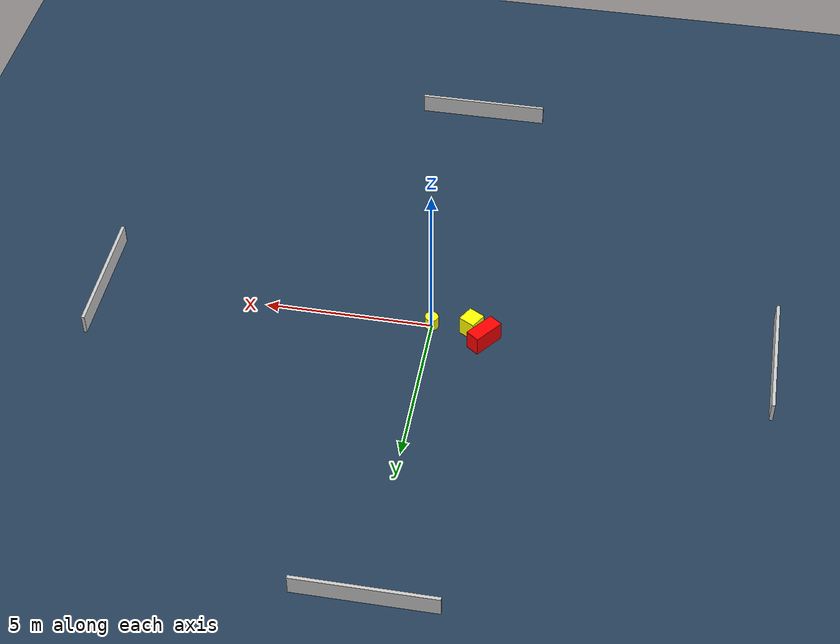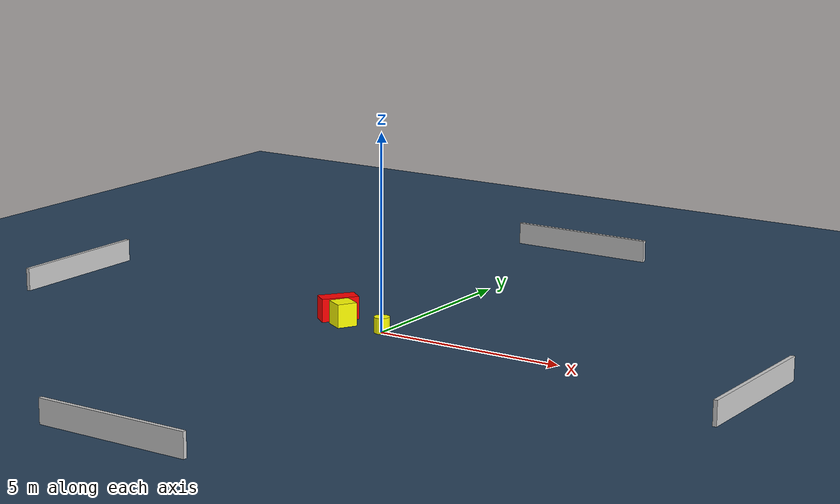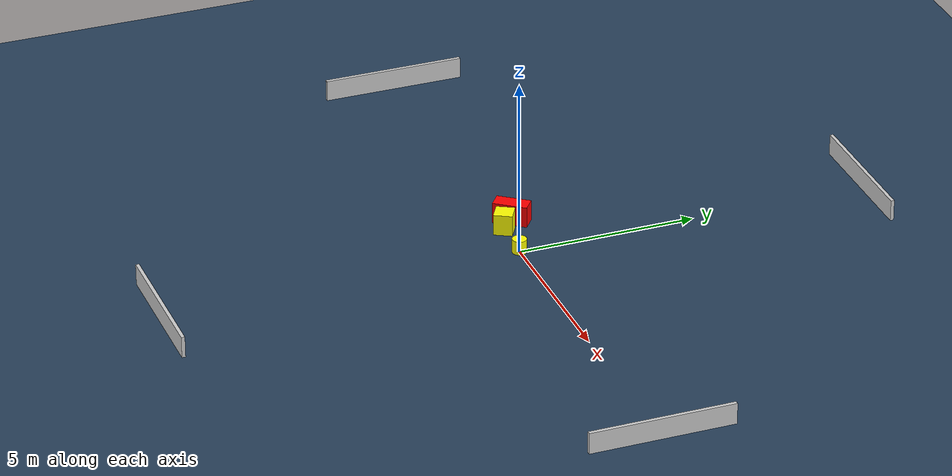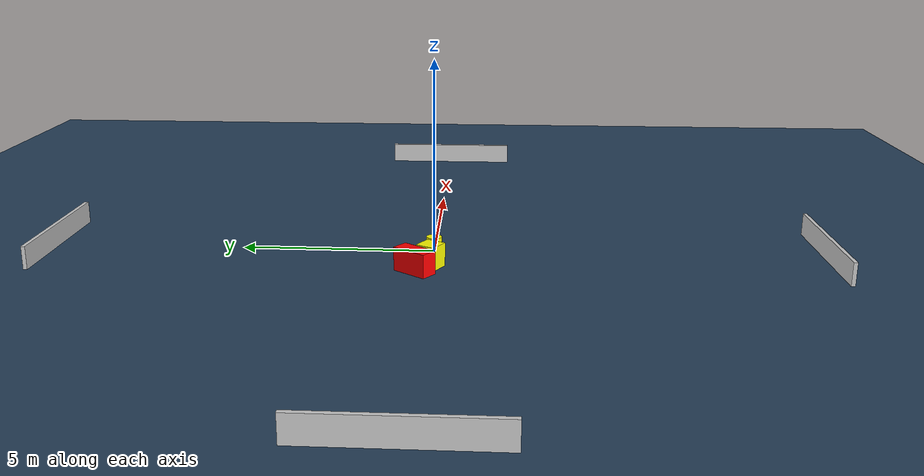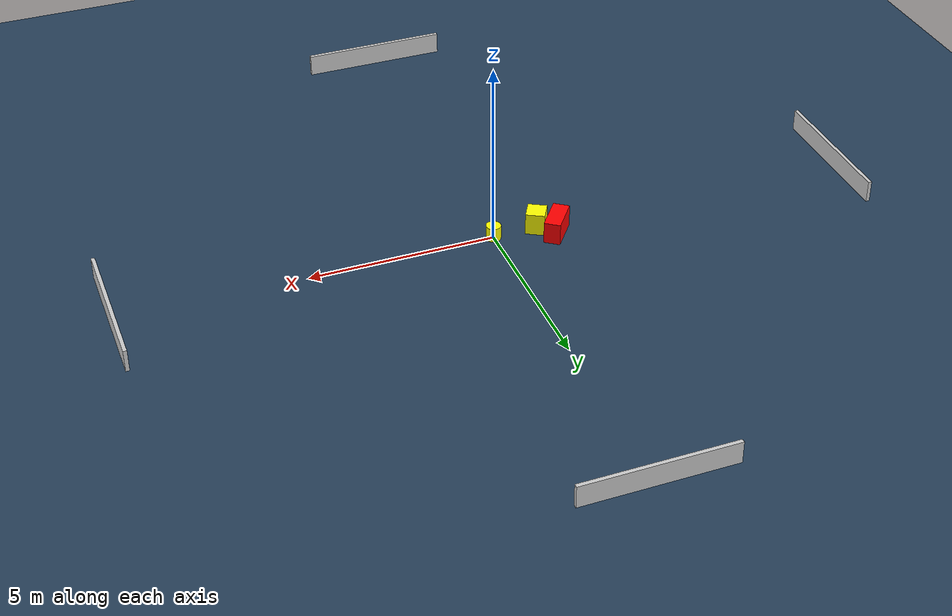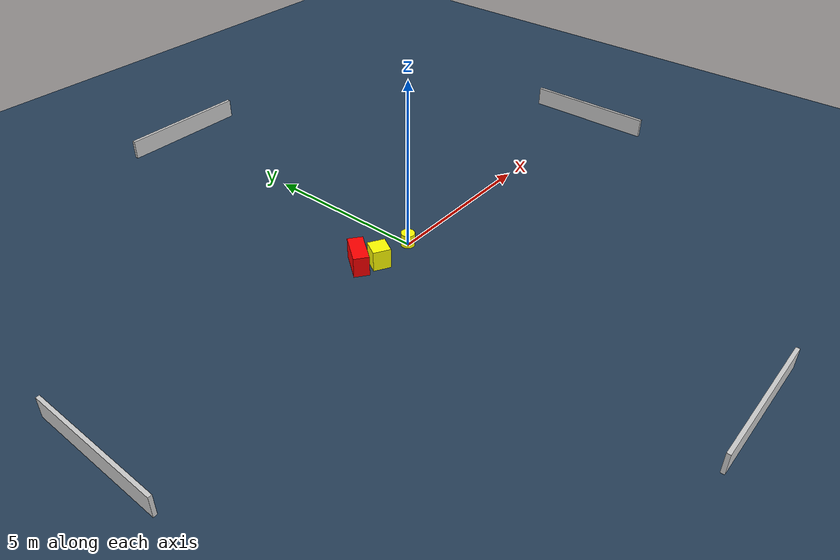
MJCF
<?xml version="1.0" ?>
<mujoco model="generated_environment">
  <option timestep="0.01" integrator="RK4" cone="elliptic"/>
  <default>
    <geom density="1"/>
  </default>
  <asset>
    <texture builtin="gradient" height="3072" name="skybox" rgb1="0.3 0.5 0.7" rgb2="0 0 0" type="skybox" width="512"/>
    <texture builtin="checker" height="300" name="groundplane" rgb1="0.2 0.3 0.4" rgb2="0.1 0.2 0.3" type="2d" width="300"/>
    <material name="groundplane" reflectance="0.2" texrepeat="5 5" texture="groundplane"/>
  </asset>
  <worldbody>
    <light dir="0 0 -1" directional="true" pos="0 0 1.5"/>
    <geom condim="3" friction="0.5 0.005 0.001" material="groundplane" name="floor" pos="0 0 0" size="0 0 0.05" type="plane"/>
    <body name="walls">
      <geom name="wall_1" condim="4" pos="-10.0 0.0 0.3" rgba="0.800000011920929 0.800000011920929 0.800000011920929 1.0" size="0.05 2.0 0.3" type="box"/>
      <geom name="wall_2" condim="4" pos="10.0 0.0 0.3" rgba="0.800000011920929 0.800000011920929 0.800000011920929 1.0" size="0.05 2.0 0.3" type="box"/>
      <geom name="wall_3" condim="4" pos="0.0 -10.0 0.3" rgba="0.800000011920929 0.800000011920929 0.800000011920929 1.0" size="2.0 0.05 0.3" type="box"/>
      <geom name="wall_4" condim="4" pos="0.0 10.0 0.3" rgba="0.800000011920929 0.800000011920929 0.800000011920929 1.0" size="2.0 0.05 0.3" type="box"/>
    </body>
    <body name="robot">
      <joint name="joint_x" type="slide" pos="0 0 0" axis="1 0 0"/>
      <joint name="joint_y" type="slide" pos="0 0 0" axis="0 1 0"/>
      <geom name="robot" type="cylinder" pos="0.0 0.0 0.2" size="0.2 0.2 0.0" mass="5.0" friction="1.0 0.005 0.0001" condim="4" rgba="1.0 1.0 0.0 1.0"/>
    </body>
    <body name="obstacle_1_movable">
      <geom name="obstacle_1_movable" condim="4" pos="-1.1922889727814736 0.02035958605185572 0.3" euler="0 0 150.30014581723321" friction="0.0 0.005 0.001" rgba="1.0 1.0 0.0 1.0" size="0.25424549643976824 0.2602223611022695 0.3" type="box" mass="0.1"/>
      <joint type="free"/>
    </body>
    <body name="obstacle_2_static">
      <geom name="obstacle_2_static" condim="4" pos="-1.6134995547490139 0.39661785761258805 0.3" euler="0 0 52.83748583418942" friction="0.0 0.005 0.001" rgba="1.0 0.0 0.0 1.0" size="0.4829699273666929 0.21998604576900196 0.3" type="box"/>
    </body>
  </worldbody>
  <actuator>
    <motor name="actuator_x" joint="joint_x" gear="1" ctrlrange="-1 1"/>
    <motor name="actuator_y" joint="joint_y" gear="1" ctrlrange="-1 1"/>
  </actuator>
</mujoco>
